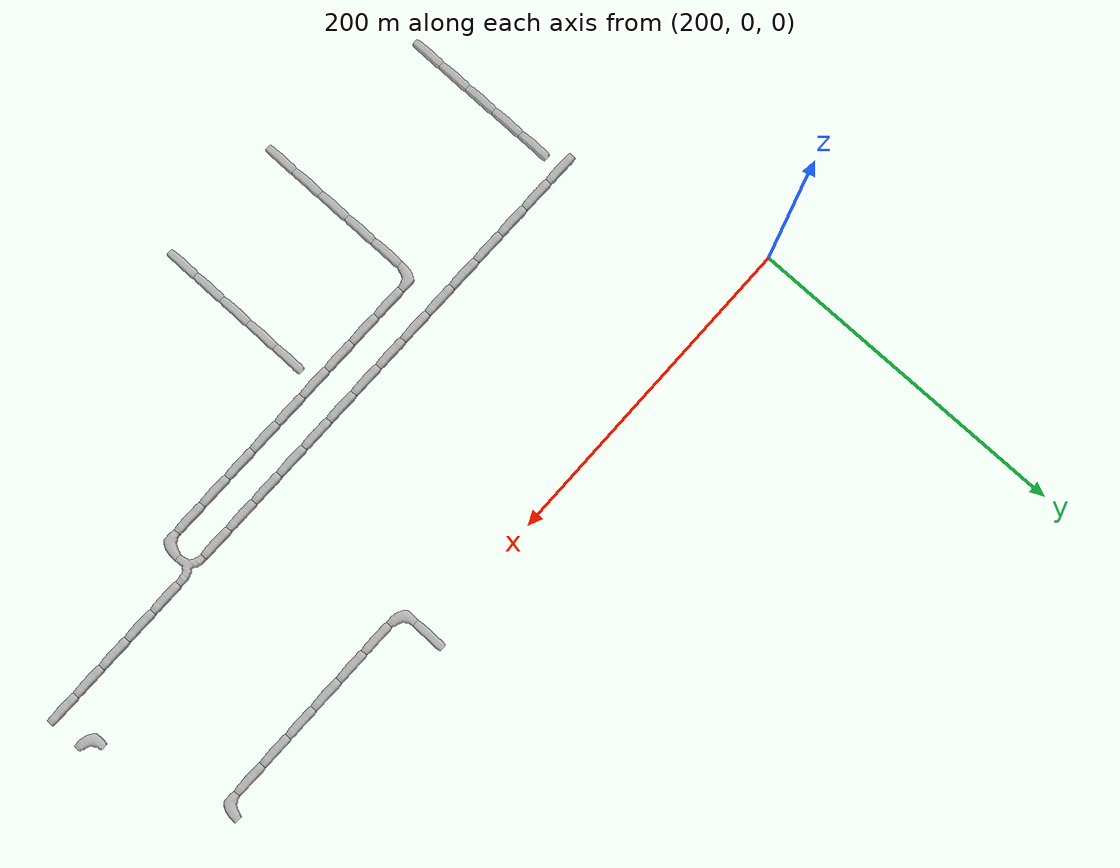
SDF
<sdf version="1.6">
 <world name="cave_32000_32">
  <include>
   <static>true</static>
   <name>cave_12_-6</name>
   <pose>240 -120 0 0 0 1.5707963267948966</pose>
   <uri>model://cave_straight_20m</uri>
  </include>
  <include>
   <static>true</static>
   <name>cave_13_-6</name>
   <pose>260 -120 0 0 0 1.5707963267948966</pose>
   <uri>model://cave_straight_20m</uri>
  </include>
  <include>
   <static>true</static>
   <name>cave_14_-6</name>
   <pose>280 -120 0 0 0 1.5707963267948966</pose>
   <uri>model://cave_straight_20m</uri>
  </include>
  <include>
   <static>true</static>
   <name>cave_15_-6</name>
   <pose>300 -120 0 0 0 1.5707963267948966</pose>
   <uri>model://cave_straight_20m</uri>
  </include>
  <include>
   <static>true</static>
   <name>cave_16_-6</name>
   <pose>320 -120 0 0 0 1.5707963267948966</pose>
   <uri>model://cave_straight_20m</uri>
  </include>
  <include>
   <static>true</static>
   <name>cave_17_-6</name>
   <pose>340 -120 0 0 0 1.5707963267948966</pose>
   <uri>model://cave_straight_20m</uri>
  </include>
  <include>
   <static>true</static>
   <name>cave_18_-6</name>
   <pose>360 -120 0 0 0 1.5707963267948966</pose>
   <uri>model://cave_straight_20m</uri>
  </include>
  <include>
   <static>true</static>
   <name>cave_19_-6</name>
   <pose>380 -120 0 0 0 1.5707963267948966</pose>
   <uri>model://cave_straight_20m</uri>
  </include>
  <include>
   <static>true</static>
   <name>cave_20_-6</name>
   <pose>400 -120 0 0 0 1.5707963267948966</pose>
   <uri>model://cave_straight_20m</uri>
  </include>
  <include>
   <static>true</static>
   <name>cave_21_-6</name>
   <pose>420 -120 0 0 0 1.5707963267948966</pose>
   <uri>model://cave_straight_20m</uri>
  </include>
  <include>
   <static>true</static>
   <name>cave_22_-6</name>
   <pose>440 -120 0 0 0 1.5707963267948966</pose>
   <uri>model://cave_straight_20m</uri>
  </include>
  <include>
   <static>true</static>
   <name>cave_23_-6</name>
   <pose>460 -120 0 0 0 1.5707963267948966</pose>
   <uri>model://cave_straight_20m</uri>
  </include>
  <include>
   <static>true</static>
   <name>cave_24_-6</name>
   <pose>480 -120 0 0 0 1.5707963267948966</pose>
   <uri>model://cave_straight_20m</uri>
  </include>
  <include>
   <static>true</static>
   <name>cave_25_-6</name>
   <pose>500 -120 0 0 0 1.5707963267948966</pose>
   <uri>model://cave_straight_20m</uri>
  </include>
  <include>
   <static>true</static>
   <name>cave_26_-6</name>
   <pose>520 -120 0 0 0 1.5707963267948966</pose>
   <uri>model://cave_straight_20m</uri>
  </include>
  <include>
   <static>true</static>
   <name>cave_27_-6</name>
   <pose>540 -120 0 0 0 3.141592653589793</pose>
   <uri>model://cave_3way_20m</uri>
  </include>
  <include>
   <static>true</static>
   <name>cave_28_-6</name>
   <pose>560 -120 0 0 0 1.5707963267948966</pose>
   <uri>model://cave_straight_20m</uri>
  </include>
  <include>
   <static>true</static>
   <name>cave_29_-6</name>
   <pose>580 -120 0 0 0 1.5707963267948966</pose>
   <uri>model://cave_straight_20m</uri>
  </include>
  <include>
   <static>true</static>
   <name>cave_30_-6</name>
   <pose>600 -120 0 0 0 1.5707963267948966</pose>
   <uri>model://cave_straight_20m</uri>
  </include>
  <include>
   <static>true</static>
   <name>cave_31_-6</name>
   <pose>620 -120 0 0 0 1.5707963267948966</pose>
   <uri>model://cave_straight_20m</uri>
  </include>
  <include>
   <static>true</static>
   <name>cave_32_-6</name>
   <pose>640 -120 0 0 0 1.5707963267948966</pose>
   <uri>model://cave_straight_20m</uri>
  </include>
  <include>
   <static>true</static>
   <name>cave_21_-12</name>
   <pose>420 -240 0 0 0 0.0</pose>
   <uri>model://cave_straight_20m</uri>
  </include>
  <include>
   <static>true</static>
   <name>cave_21_-11</name>
   <pose>420 -220 0 0 0 0.0</pose>
   <uri>model://cave_straight_20m</uri>
  </include>
  <include>
   <static>true</static>
   <name>cave_21_-10</name>
   <pose>420 -200 0 0 0 0.0</pose>
   <uri>model://cave_straight_20m</uri>
  </include>
  <include>
   <static>true</static>
   <name>cave_21_-9</name>
   <pose>420 -180 0 0 0 0.0</pose>
   <uri>model://cave_straight_20m</uri>
  </include>
  <include>
   <static>true</static>
   <name>cave_21_-8</name>
   <pose>420 -160 0 0 0 0.0</pose>
   <uri>model://cave_straight_20m</uri>
  </include>
  <include>
   <static>true</static>
   <name>cave_32_-5</name>
   <pose>640 -100 0 0 0 0.0</pose>
   <uri>model://cave_L_20m</uri>
  </include>
  <include>
   <static>true</static>
   <name>cave_24_0</name>
   <pose>480 0 0 0 0 0.0</pose>
   <uri>model://cave_straight_20m</uri>
  </include>
  <include>
   <static>true</static>
   <name>cave_24_-1</name>
   <pose>480 -20 0 0 0 0.0</pose>
   <uri>model://cave_L_20m</uri>
  </include>
  <include>
   <static>true</static>
   <name>cave_25_-1</name>
   <pose>500 -20 0 0 0 1.5707963267948966</pose>
   <uri>model://cave_straight_20m</uri>
  </include>
  <include>
   <static>true</static>
   <name>cave_26_-1</name>
   <pose>520 -20 0 0 0 1.5707963267948966</pose>
   <uri>model://cave_straight_20m</uri>
  </include>
  <include>
   <static>true</static>
   <name>cave_27_-1</name>
   <pose>540 -20 0 0 0 1.5707963267948966</pose>
   <uri>model://cave_straight_20m</uri>
  </include>
  <include>
   <static>true</static>
   <name>cave_28_-1</name>
   <pose>560 -20 0 0 0 1.5707963267948966</pose>
   <uri>model://cave_straight_20m</uri>
  </include>
  <include>
   <static>true</static>
   <name>cave_29_-1</name>
   <pose>580 -20 0 0 0 1.5707963267948966</pose>
   <uri>model://cave_straight_20m</uri>
  </include>
  <include>
   <static>true</static>
   <name>cave_30_-1</name>
   <pose>600 -20 0 0 0 1.5707963267948966</pose>
   <uri>model://cave_straight_20m</uri>
  </include>
  <include>
   <static>true</static>
   <name>cave_31_-1</name>
   <pose>620 -20 0 0 0 1.5707963267948966</pose>
   <uri>model://cave_L_20m</uri>
  </include>
  <include>
   <static>true</static>
   <name>cave_27_-7</name>
   <pose>540 -140 0 0 0 1.5707963267948966</pose>
   <uri>model://cave_L_20m</uri>
  </include>
  <include>
   <static>true</static>
   <name>cave_26_-7</name>
   <pose>520 -140 0 0 0 1.5707963267948966</pose>
   <uri>model://cave_straight_20m</uri>
  </include>
  <include>
   <static>true</static>
   <name>cave_25_-7</name>
   <pose>500 -140 0 0 0 1.5707963267948966</pose>
   <uri>model://cave_straight_20m</uri>
  </include>
  <include>
   <static>true</static>
   <name>cave_24_-7</name>
   <pose>480 -140 0 0 0 1.5707963267948966</pose>
   <uri>model://cave_straight_20m</uri>
  </include>
  <include>
   <static>true</static>
   <name>cave_23_-7</name>
   <pose>460 -140 0 0 0 1.5707963267948966</pose>
   <uri>model://cave_straight_20m</uri>
  </include>
  <include>
   <static>true</static>
   <name>cave_22_-7</name>
   <pose>440 -140 0 0 0 1.5707963267948966</pose>
   <uri>model://cave_straight_20m</uri>
  </include>
  <include>
   <static>true</static>
   <name>cave_21_-7</name>
   <pose>420 -140 0 0 0 1.5707963267948966</pose>
   <uri>model://cave_straight_20m</uri>
  </include>
  <include>
   <static>true</static>
   <name>cave_20_-7</name>
   <pose>400 -140 0 0 0 1.5707963267948966</pose>
   <uri>model://cave_straight_20m</uri>
  </include>
  <include>
   <static>true</static>
   <name>cave_19_-7</name>
   <pose>380 -140 0 0 0 1.5707963267948966</pose>
   <uri>model://cave_straight_20m</uri>
  </include>
  <include>
   <static>true</static>
   <name>cave_18_-7</name>
   <pose>360 -140 0 0 0 1.5707963267948966</pose>
   <uri>model://cave_straight_20m</uri>
  </include>
  <include>
   <static>true</static>
   <name>cave_17_-7</name>
   <pose>340 -140 0 0 0 -1.5707963267948966</pose>
   <uri>model://cave_L_20m</uri>
  </include>
  <include>
   <static>true</static>
   <name>cave_17_-8</name>
   <pose>340 -160 0 0 0 0.0</pose>
   <uri>model://cave_straight_20m</uri>
  </include>
  <include>
   <static>true</static>
   <name>cave_17_-9</name>
   <pose>340 -180 0 0 0 0.0</pose>
   <uri>model://cave_straight_20m</uri>
  </include>
  <include>
   <static>true</static>
   <name>cave_17_-10</name>
   <pose>340 -200 0 0 0 0.0</pose>
   <uri>model://cave_straight_20m</uri>
  </include>
  <include>
   <static>true</static>
   <name>cave_17_-11</name>
   <pose>340 -220 0 0 0 0.0</pose>
   <uri>model://cave_straight_20m</uri>
  </include>
  <include>
   <static>true</static>
   <name>cave_17_-12</name>
   <pose>340 -240 0 0 0 0.0</pose>
   <uri>model://cave_straight_20m</uri>
  </include>
  <include>
   <static>true</static>
   <name>cave_12_-11</name>
   <pose>240 -220 0 0 0 0.0</pose>
   <uri>model://cave_straight_20m</uri>
  </include>
  <include>
   <static>true</static>
   <name>cave_12_-10</name>
   <pose>240 -200 0 0 0 0.0</pose>
   <uri>model://cave_straight_20m</uri>
  </include>
  <include>
   <static>true</static>
   <name>cave_12_-9</name>
   <pose>240 -180 0 0 0 0.0</pose>
   <uri>model://cave_straight_20m</uri>
  </include>
  <include>
   <static>true</static>
   <name>cave_12_-8</name>
   <pose>240 -160 0 0 0 0.0</pose>
   <uri>model://cave_straight_20m</uri>
  </include>
  <include>
   <static>true</static>
   <name>cave_12_-7</name>
   <pose>240 -140 0 0 0 0.0</pose>
   <uri>model://cave_straight_20m</uri>
  </include>
 </world>
</sdf>
